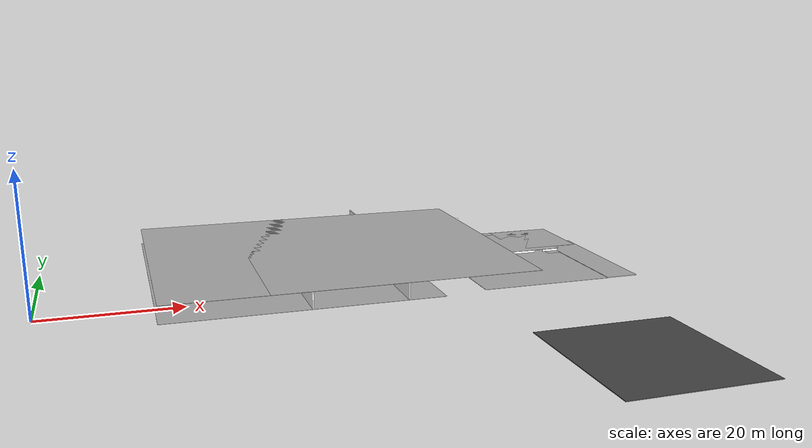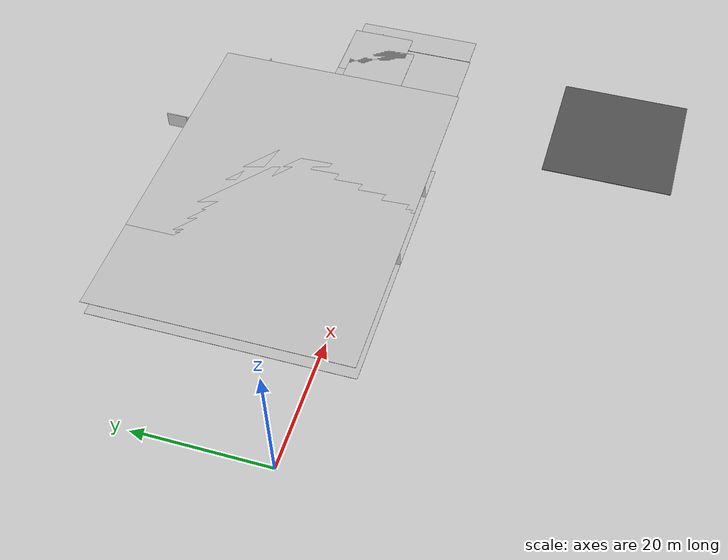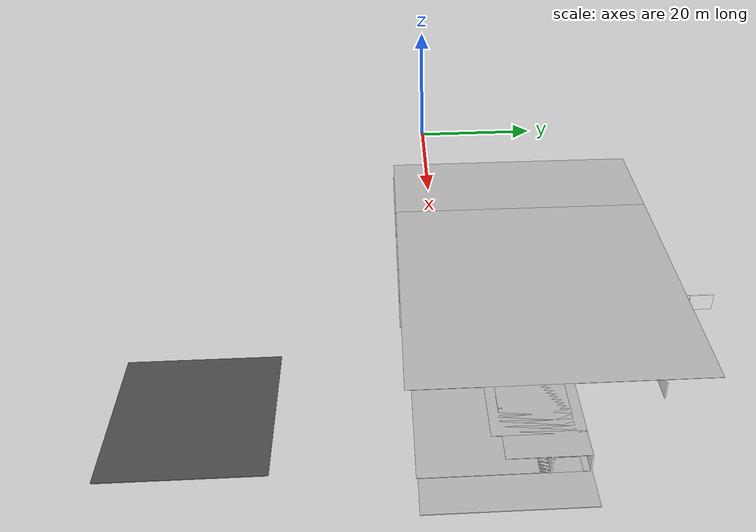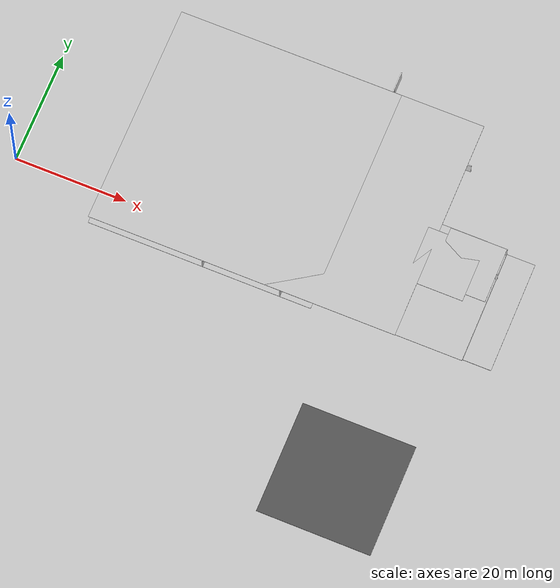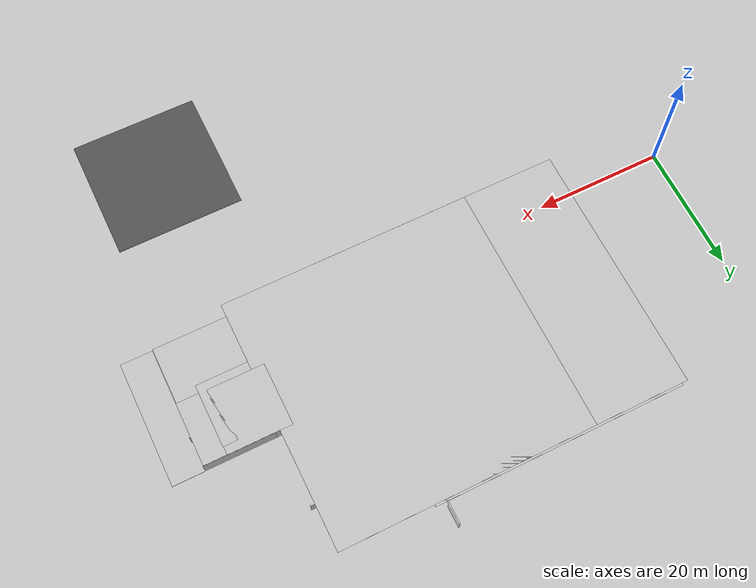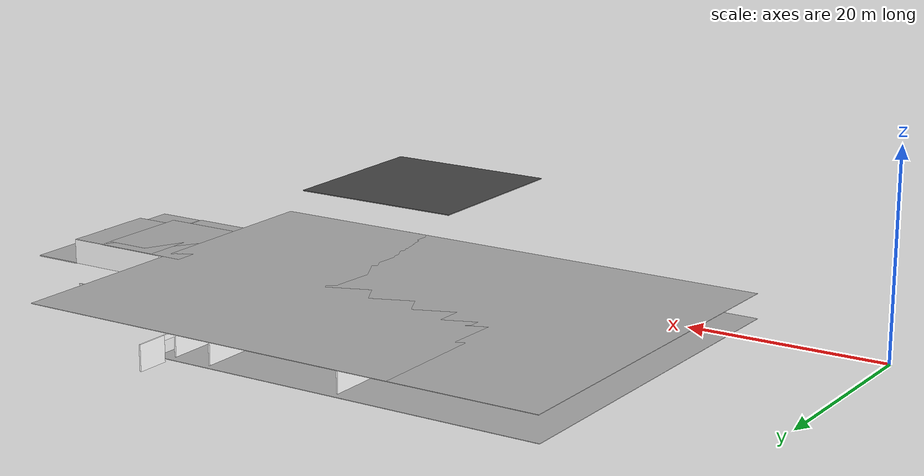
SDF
<sdf version="1.6">
 <world name="default">
  <model name="mainoffice">
   <pose>42.7555 15.4488 0 0 -0 0</pose>
   <link name="Wall_103">
    <pose>7.35091 -1.575 0 0 0 -1.5708</pose>
    <visual name="Wall_103_Visual_0">
     <pose>-9.6287 0 1.25 0 -0 0</pose>
     <geometry><box><size>19.9926 0.15 2.5</size></box></geometry>
     <material>
      <script>
       <uri>model://office_env/materials/scripts</uri>
       <uri>model://office_env/materials/textures</uri>
       <name>wall</name>
      </script>
      <ambient>1 1 1 1</ambient>
     </material>
    </visual>
    <collision name="Wall_103_Collision_0">
     <geometry><box><size>19.9926 0.15 2.5</size></box></geometry>
     <pose>-9.6287 0 1.25 0 -0 0</pose>
    </collision>
    <visual name="Wall_103_Visual_1">
     <pose>10.7463 0 1.25 0 -0 0</pose>
     <geometry><box><size>17.7574 0.15 2.5</size></box></geometry>
     <material>
      <script>
       <uri>model://office_env/materials/scripts</uri>
       <uri>model://office_env/materials/textures</uri>
       <name>wall</name>
      </script>
      <ambient>1 1 1 1</ambient>
     </material>
    </visual>
    <collision name="Wall_103_Collision_1">
     <geometry><box><size>17.7574 0.15 2.5</size></box></geometry>
     <pose>10.7463 0 1.25 0 -0 0</pose>
    </collision>
    <visual name="Wall_103_Visual_2">
     <pose>1.1176 0 2.25 0 -0 0</pose>
     <geometry><box><size>1.5 0.15 0.5</size></box></geometry>
     <material>
      <script>
       <uri>model://office_env/materials/scripts</uri>
       <uri>model://office_env/materials/textures</uri>
       <name>wall</name>
      </script>
      <ambient>1 1 1 1</ambient>
     </material>
    </visual>
    <collision name="Wall_103_Collision_2">
     <geometry><box><size>1.5 0.15 0.5</size></box></geometry>
     <pose>1.1176 0 2.25 0 -0 0</pose>
    </collision>
   </link>
   <link name="Wall_108">
    <pose>11.0759 -0.175002 0 0 -0 3.14159</pose>
    <visual name="Wall_108_Visual_0">
     <pose>-8.20991 0 1.25 0 -0 0</pose>
     <geometry><box><size>18.5802 0.15 2.5</size></box></geometry>
     <material>
      <script>
       <uri>model://office_env/materials/scripts</uri>
       <uri>model://office_env/materials/textures</uri>
       <name>wall</name>
      </script>
      <ambient>1 1 1 1</ambient>
     </material>
    </visual>
    <collision name="Wall_108_Collision_0">
     <geometry><box><size>18.5802 0.15 2.5</size></box></geometry>
     <pose>-8.20991 0 1.25 0 -0 0</pose>
    </collision>
    <visual name="Wall_108_Visual_1">
     <pose>10.0401 0 1.25 0 -0 0</pose>
     <geometry><box><size>14.9198 0.15 2.5</size></box></geometry>
     <material>
      <script>
       <uri>model://office_env/materials/scripts</uri>
       <uri>model://office_env/materials/textures</uri>
       <name>wall</name>
      </script>
      <ambient>1 1 1 1</ambient>
     </material>
    </visual>
    <collision name="Wall_108_Collision_1">
     <geometry><box><size>14.9198 0.15 2.5</size></box></geometry>
     <pose>10.0401 0 1.25 0 -0 0</pose>
    </collision>
    <visual name="Wall_108_Visual_2">
     <pose>1.83018 0 2.25 0 -0 0</pose>
     <geometry><box><size>1.5 0.15 0.5</size></box></geometry>
     <material>
      <script>
       <uri>model://office_env/materials/scripts</uri>
       <uri>model://office_env/materials/textures</uri>
       <name>wall</name>
      </script>
      <ambient>1 1 1 1</ambient>
     </material>
    </visual>
    <collision name="Wall_108_Collision_2">
     <geometry><box><size>1.5 0.15 0.5</size></box></geometry>
     <pose>1.83018 0 2.25 0 -0 0</pose>
    </collision>
   </link>
   <link name="Wall_112">
    <pose>16.5456 -4.78754 0 0 -0 3.14159</pose>
    <visual name="Wall_112_Visual_0">
     <pose>-21.6387 0 1.25 0 -0 0</pose>
     <geometry><box><size>2.72252 0.15 2.5</size></box></geometry>
     <material>
      <script>
       <uri>model://office_env/materials/scripts</uri>
       <uri>model://office_env/materials/textures</uri>
       <name>wall</name>
      </script>
      <ambient>1 1 1 1</ambient>
     </material>
    </visual>
    <collision name="Wall_112_Collision_0">
     <geometry><box><size>2.72252 0.15 2.5</size></box></geometry>
     <pose>-21.6387 0 1.25 0 -0 0</pose>
    </collision>
    <visual name="Wall_112_Visual_1">
     <pose>-15.759 0 1.25 0 -0 0</pose>
     <geometry><box><size>6.03688 0.15 2.5</size></box></geometry>
     <material>
      <script>
       <uri>model://office_env/materials/scripts</uri>
       <uri>model://office_env/materials/textures</uri>
       <name>wall</name>
      </script>
      <ambient>1 1 1 1</ambient>
     </material>
    </visual>
    <collision name="Wall_112_Collision_1">
     <geometry><box><size>6.03688 0.15 2.5</size></box></geometry>
     <pose>-15.759 0 1.25 0 -0 0</pose>
    </collision>
    <visual name="Wall_112_Visual_2">
     <pose>-5.98902 0 1.25 0 -0 0</pose>
     <geometry><box><size>10.5032 0.15 2.5</size></box></geometry>
     <material>
      <script>
       <uri>model://office_env/materials/scripts</uri>
       <uri>model://office_env/materials/textures</uri>
       <name>wall</name>
      </script>
      <ambient>1 1 1 1</ambient>
     </material>
    </visual>
    <collision name="Wall_112_Collision_2">
     <geometry><box><size>10.5032 0.15 2.5</size></box></geometry>
     <pose>-5.98902 0 1.25 0 -0 0</pose>
    </collision>
    <visual name="Wall_112_Visual_3">
     <pose>3.64384 0 1.25 0 -0 0</pose>
     <geometry><box><size>5.76255 0.15 2.5</size></box></geometry>
     <material>
      <script>
       <uri>model://office_env/materials/scripts</uri>
       <uri>model://office_env/materials/textures</uri>
       <name>wall</name>
      </script>
      <ambient>1 1 1 1</ambient>
     </material>
    </visual>
    <collision name="Wall_112_Collision_3">
     <geometry><box><size>5.76255 0.15 2.5</size></box></geometry>
     <pose>3.64384 0 1.25 0 -0 0</pose>
    </collision>
    <visual name="Wall_112_Visual_4">
     <pose>15.5126 0 1.25 0 -0 0</pose>
     <geometry><box><size>14.9749 0.15 2.5</size></box></geometry>
     <material>
      <script>
       <uri>model://office_env/materials/scripts</uri>
       <uri>model://office_env/materials/textures</uri>
       <name>wall</name>
      </script>
      <ambient>1 1 1 1</ambient>
     </material>
    </visual>
    <collision name="Wall_112_Collision_4">
     <geometry><box><size>14.9749 0.15 2.5</size></box></geometry>
     <pose>15.5126 0 1.25 0 -0 0</pose>
    </collision>
    <visual name="Wall_112_Visual_5">
     <pose>-19.5275 0 2.25 0 -0 0</pose>
     <geometry><box><size>1.5 0.15 0.5</size></box></geometry>
     <material>
      <script>
       <uri>model://office_env/materials/scripts</uri>
       <uri>model://office_env/materials/textures</uri>
       <name>wall</name>
      </script>
      <ambient>1 1 1 1</ambient>
     </material>
    </visual>
    <collision name="Wall_112_Collision_5">
     <geometry><box><size>1.5 0.15 0.5</size></box></geometry>
     <pose>-19.5275 0 2.25 0 -0 0</pose>
    </collision>
    <visual name="Wall_112_Visual_6">
     <pose>-11.9906 0 2.25 0 -0 0</pose>
     <geometry><box><size>1.5 0.15 0.5</size></box></geometry>
     <material>
      <script>
       <uri>model://office_env/materials/scripts</uri>
       <uri>model://office_env/materials/textures</uri>
       <name>wall</name>
      </script>
      <ambient>1 1 1 1</ambient>
     </material>
    </visual>
    <collision name="Wall_112_Collision_6">
     <geometry><box><size>1.5 0.15 0.5</size></box></geometry>
     <pose>-11.9906 0 2.25 0 -0 0</pose>
    </collision>
    <visual name="Wall_112_Visual_7">
     <pose>0.01256 0 2.25 0 -0 0</pose>
     <geometry><box><size>1.5 0.15 0.5</size></box></geometry>
     <material>
      <script>
       <uri>model://office_env/materials/scripts</uri>
       <uri>model://office_env/materials/textures</uri>
       <name>wall</name>
      </script>
      <ambient>1 1 1 1</ambient>
     </material>
    </visual>
    <collision name="Wall_112_Collision_7">
     <geometry><box><size>1.5 0.15 0.5</size></box></geometry>
     <pose>0.01256 0 2.25 0 -0 0</pose>
    </collision>
    <visual name="Wall_112_Visual_8">
     <pose>7.27511 0 2.25 0 -0 0</pose>
     <geometry><box><size>1.5 0.15 0.5</size></box></geometry>
     <material>
      <script>
       <uri>model://office_env/materials/scripts</uri>
       <uri>model://office_env/materials/textures</uri>
       <name>wall</name>
      </script>
      <ambient>1 1 1 1</ambient>
     </material>
    </visual>
    <collision name="Wall_112_Collision_8">
     <geometry><box><size>1.5 0.15 0.5</size></box></geometry>
     <pose>7.27511 0 2.25 0 -0 0</pose>
    </collision>
   </link>
   <link name="Wall_115">
    <pose>11.3794 11.2815 0 0 0 -1.5708</pose>
    <visual name="Wall_115_Visual_0">
     <pose>-9.73453 0 1.25 0 -0 0</pose>
     <geometry><box><size>3.28094 0.15 2.5</size></box></geometry>
     <material>
      <script>
       <uri>model://office_env/materials/scripts</uri>
       <uri>model://office_env/materials/textures</uri>
       <name>wall</name>
      </script>
      <ambient>1 1 1 1</ambient>
     </material>
    </visual>
    <collision name="Wall_115_Collision_0">
     <geometry><box><size>3.28094 0.15 2.5</size></box></geometry>
     <pose>-9.73453 0 1.25 0 -0 0</pose>
    </collision>
    <visual name="Wall_115_Visual_1">
     <pose>-2.73819 0 1.25 0 -0 0</pose>
     <geometry><box><size>7.71174 0.15 2.5</size></box></geometry>
     <material>
      <script>
       <uri>model://office_env/materials/scripts</uri>
       <uri>model://office_env/materials/textures</uri>
       <name>wall</name>
      </script>
      <ambient>1 1 1 1</ambient>
     </material>
    </visual>
    <collision name="Wall_115_Collision_1">
     <geometry><box><size>7.71174 0.15 2.5</size></box></geometry>
     <pose>-2.73819 0 1.25 0 -0 0</pose>
    </collision>
    <visual name="Wall_115_Visual_2">
     <pose>6.99634 0 1.25 0 -0 0</pose>
     <geometry><box><size>8.75732 0.15 2.5</size></box></geometry>
     <material>
      <script>
       <uri>model://office_env/materials/scripts</uri>
       <uri>model://office_env/materials/textures</uri>
       <name>wall</name>
      </script>
      <ambient>1 1 1 1</ambient>
     </material>
    </visual>
    <collision name="Wall_115_Collision_2">
     <geometry><box><size>8.75732 0.15 2.5</size></box></geometry>
     <pose>6.99634 0 1.25 0 -0 0</pose>
    </collision>
    <visual name="Wall_115_Visual_3">
     <pose>-7.34406 0 2.25 0 -0 0</pose>
     <geometry><box><size>1.5 0.15 0.5</size></box></geometry>
     <material>
      <script>
       <uri>model://office_env/materials/scripts</uri>
       <uri>model://office_env/materials/textures</uri>
       <name>wall</name>
      </script>
      <ambient>1 1 1 1</ambient>
     </material>
    </visual>
    <collision name="Wall_115_Collision_3">
     <geometry><box><size>1.5 0.15 0.5</size></box></geometry>
     <pose>-7.34406 0 2.25 0 -0 0</pose>
    </collision>
    <visual name="Wall_115_Visual_4">
     <pose>1.86768 0 2.25 0 -0 0</pose>
     <geometry><box><size>1.5 0.15 0.5</size></box></geometry>
     <material>
      <script>
       <uri>model://office_env/materials/scripts</uri>
       <uri>model://office_env/materials/textures</uri>
       <name>wall</name>
      </script>
      <ambient>1 1 1 1</ambient>
     </material>
    </visual>
    <collision name="Wall_115_Collision_4">
     <geometry><box><size>1.5 0.15 0.5</size></box></geometry>
     <pose>1.86768 0 2.25 0 -0 0</pose>
    </collision>
   </link>
   <link name="Wall_156">
    <collision name="Wall_156_Collision">
     <geometry><box><size>17 0.15 2.5</size></box></geometry>
     <pose>0 0 1.25 0 -0 0</pose>
    </collision>
    <visual name="Wall_156_Visual">
     <pose>0 0 1.25 0 -0 0</pose>
     <geometry><box><size>17 0.15 2.5</size></box></geometry>
     <material>
      <script>
       <uri>model://office_env/materials/scripts</uri>
       <uri>model://office_env/materials/textures</uri>
       <name>wall</name>
      </script>
      <ambient>1 1 1 1</ambient>
     </material>
    </visual>
    <pose>19.9286 11.4108 0 0 -0 0</pose>
   </link>
   <link name="Wall_42">
    <collision name="Wall_42_Collision">
     <geometry><box><size>11 0.15 2.5</size></box></geometry>
     <pose>0 0 1.25 0 -0 0</pose>
    </collision>
    <visual name="Wall_42_Visual">
     <pose>0 0 1.25 0 -0 0</pose>
     <geometry><box><size>11 0.15 2.5</size></box></geometry>
     <material>
      <script>
       <uri>model://office_env/materials/scripts</uri>
       <uri>model://office_env/materials/textures</uri>
       <name>wall</name>
      </script>
      <ambient>1 1 1 1</ambient>
     </material>
    </visual>
    <pose>33.9259 -0.175002 0 0 -0 0</pose>
   </link>
   <link name="Wall_77">
    <pose>-6.49909 -1.675 0 0 -0 1.5708</pose>
    <visual name="Wall_77_Visual_0">
     <pose>-10.5358 0 1.25 0 -0 0</pose>
     <geometry><box><size>18.1784 0.15 2.5</size></box></geometry>
     <material>
      <script>
       <uri>model://office_env/materials/scripts</uri>
       <uri>model://office_env/materials/textures</uri>
       <name>wall</name>
      </script>
      <ambient>1 1 1 1</ambient>
     </material>
    </visual>
    <collision name="Wall_77_Collision_0">
     <geometry><box><size>18.1784 0.15 2.5</size></box></geometry>
     <pose>-10.5358 0 1.25 0 -0 0</pose>
    </collision>
    <visual name="Wall_77_Visual_1">
     <pose>9.83921 0 1.25 0 -0 0</pose>
     <geometry><box><size>19.5716 0.15 2.5</size></box></geometry>
     <material>
      <script>
       <uri>model://office_env/materials/scripts</uri>
       <uri>model://office_env/materials/textures</uri>
       <name>wall</name>
      </script>
      <ambient>1 1 1 1</ambient>
     </material>
    </visual>
    <collision name="Wall_77_Collision_1">
     <geometry><box><size>19.5716 0.15 2.5</size></box></geometry>
     <pose>9.83921 0 1.25 0 -0 0</pose>
    </collision>
    <visual name="Wall_77_Visual_2">
     <pose>-0.696588 0 2.25 0 -0 0</pose>
     <geometry><box><size>1.5 0.15 0.5</size></box></geometry>
     <material>
      <script>
       <uri>model://office_env/materials/scripts</uri>
       <uri>model://office_env/materials/textures</uri>
       <name>wall</name>
      </script>
      <ambient>1 1 1 1</ambient>
     </material>
    </visual>
    <collision name="Wall_77_Collision_2">
     <geometry><box><size>1.5 0.15 0.5</size></box></geometry>
     <pose>-0.696588 0 2.25 0 -0 0</pose>
    </collision>
   </link>
   <static>1</static>
  </model>
  <model name="asphalt_plane">
   <static>1</static>
   <link name="link">
    <collision name="collision"><geometry><box><size>20 20 0.1</size></box></geometry></collision>
    <visual name="visual">
     <cast_shadows>0</cast_shadows>
     <geometry><box><size>20 20 0.1</size></box></geometry>
     <material>
      <script>
       <uri>model://asphalt_plane/materials/scripts</uri>
       <uri>model://asphalt_plane/materials/textures</uri>
       <name>vrc/asphalt</name>
      </script>
     </material>
    </visual>
   </link>
   <pose>70.7475 -31.5972 0 0 -0 0</pose>
  </model>
  <model name="Floor_29">
   <link name="main">
    <pose>0 0 0.01 0 -0 0</pose>
    <collision name="main_Collision"><geometry><box><size>40 40 0.05</size></box></geometry></collision>
    <visual name="main_Visual">
     <geometry><box><size>40 40 0.05</size></box></geometry>
     <material>
      <script>
       <uri>model://Floor_large/materials/scripts</uri>
       <uri>model://Floor_large/materials/textures</uri>
       <name>floor</name>
      </script>
     </material>
    </visual>
   </link>
   <static>1</static>
   <pose>35.6713 14.1423 0 0 -0 0</pose>
  </model>
  <model name="Floor_31">
   <link name="main">
    <pose>0 0 0.01 0 -0 0</pose>
    <collision name="main_Collision"><geometry><box><size>20 20 0.05</size></box></geometry></collision>
    <visual name="main_Visual">
     <geometry><box><size>20 20 0.05</size></box></geometry>
     <material>
      <script>
       <uri>model://Floor_medium/materials/scripts</uri>
       <uri>model://Floor_medium/materials/textures</uri>
       <name>floor</name>
      </script>
     </material>
    </visual>
   </link>
   <static>1</static>
   <pose>72.1138 5.20177 0 0 -0 0</pose>
  </model>
  <model name="Floor_33">
   <link name="main">
    <pose>0 0 0.01 0 -0 0</pose>
    <collision name="main_Collision"><geometry><box><size>10 10 0.05</size></box></geometry></collision>
    <visual name="main_Visual">
     <geometry><box><size>10 10 0.05</size></box></geometry>
     <material>
      <script>
       <uri>model://Floor_small/materials/scripts</uri>
       <uri>model://Floor_small/materials/textures</uri>
       <name>floor</name>
      </script>
     </material>
    </visual>
   </link>
   <static>1</static>
   <pose>58.8887 15.1913 0 0 -0 0</pose>
  </model>
  <model name="outdoor_plane_14">
   <static>1</static>
   <link name="link">
    <collision name="collision"><geometry><box><size>5 20 0.1</size></box></geometry></collision>
    <visual name="visual">
     <cast_shadows>0</cast_shadows>
     <geometry><box><size>5 20 0.1</size></box></geometry>
     <material>
      <script>
       <uri>model://outdoor_plane/materials/scripts</uri>
       <uri>model://outdoor_plane/materials/textures</uri>
       <name>outds/Image</name>
      </script>
     </material>
    </visual>
   </link>
   <pose>84.69 5.3843 0 0 -0 0</pose>
  </model>
  <model name="Floor">
   <link name="main">
    <pose>0 0 0.01 0 -0 0</pose>
    <collision name="main_Collision"><geometry><box><size>5 5 0.05</size></box></geometry></collision>
    <visual name="main_Visual">
     <geometry><box><size>5 5 0.05</size></box></geometry>
     <material>
      <script>
       <uri>model://Floor_verysmall/materials/scripts</uri>
       <uri>model://Floor_verysmall/materials/textures</uri>
       <name>floor</name>
      </script>
     </material>
    </visual>
   </link>
   <static>1</static>
   <pose>82.4986 11.8686 0 0 -0 0</pose>
  </model>
  <model name="Floor_5_clone_0">
   <link name="main">
    <pose>0 0 0.01 0 -0 0</pose>
    <collision name="main_Collision"><geometry><box><size>40 40 0.05</size></box></geometry></collision>
    <visual name="main_Visual">
     <geometry><box><size>40 40 0.05</size></box></geometry>
     <material>
      <script>
       <uri>model://Floor_large/materials/scripts</uri>
       <uri>model://Floor_large/materials/textures</uri>
       <name>floor</name>
      </script>
     </material>
    </visual>
   </link>
   <static>1</static>
   <pose>35.7263 14.2656 2.5 0 -0 0</pose>
  </model>
  <model name="Floor_3_clone_10_clone_0">
   <link name="main">
    <pose>0 0 0.01 0 -0 0</pose>
    <collision name="main_Collision"><geometry><box><size>10 10 0.05</size></box></geometry></collision>
    <visual name="main_Visual">
     <geometry><box><size>10 10 0.05</size></box></geometry>
     <material>
      <script>
       <uri>model://Floor_small/materials/scripts</uri>
       <uri>model://Floor_small/materials/textures</uri>
       <name>floor</name>
      </script>
     </material>
    </visual>
   </link>
   <static>1</static>
   <pose>73.6143 9.05298 2.5 0 -0 0</pose>
  </model>
  <model name="Floor_3_clone_10_clone_1">
   <link name="main">
    <pose>0 0 0.01 0 -0 0</pose>
    <collision name="main_Collision"><geometry><box><size>10 10 0.05</size></box></geometry></collision>
    <visual name="main_Visual">
     <geometry><box><size>10 10 0.05</size></box></geometry>
     <material>
      <script>
       <uri>model://Floor_small/materials/scripts</uri>
       <uri>model://Floor_small/materials/textures</uri>
       <name>floor</name>
      </script>
     </material>
    </visual>
   </link>
   <static>1</static>
   <pose>73.5381 10.3618 2.5 0 -0 0</pose>
  </model>
  <model name="Floor_3_clone_10_clone_3">
   <link name="main">
    <pose>0 0 0.01 0 -0 0</pose>
    <collision name="main_Collision"><geometry><box><size>10 10 0.05</size></box></geometry></collision>
    <visual name="main_Visual">
     <geometry><box><size>10 10 0.05</size></box></geometry>
     <material>
      <script>
       <uri>model://Floor_small/materials/scripts</uri>
       <uri>model://Floor_small/materials/textures</uri>
       <name>floor</name>
      </script>
     </material>
    </visual>
   </link>
   <static>1</static>
   <pose>77.1026 10.3141 2.5 0 -0 0</pose>
  </model>
  <model name="Floor_5_clone_0_clone">
   <link name="main">
    <pose>0 0 0.01 0 -0 0</pose>
    <collision name="main_Collision"><geometry><box><size>40 40 0.05</size></box></geometry></collision>
    <visual name="main_Visual">
     <geometry><box><size>40 40 0.05</size></box></geometry>
     <material>
      <script>
       <uri>model://Floor_large/materials/scripts</uri>
       <uri>model://Floor_large/materials/textures</uri>
       <name>floor</name>
      </script>
     </material>
    </visual>
   </link>
   <static>1</static>
   <pose>50.5427 14.2776 2.5 0 -0 0</pose>
  </model>
 </world>
</sdf>
